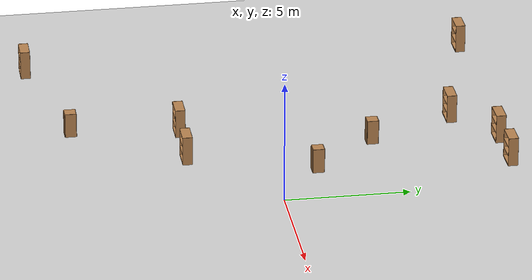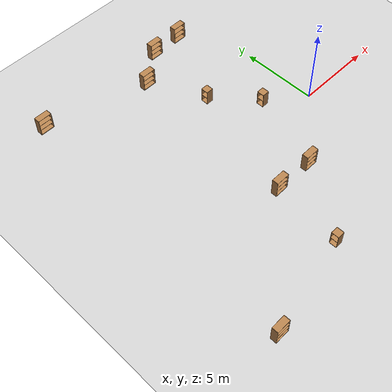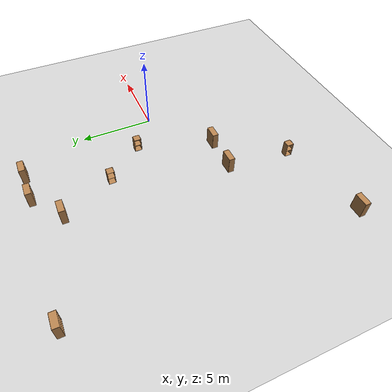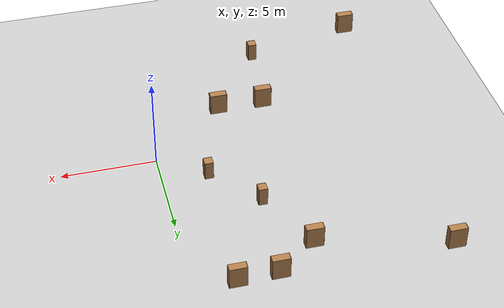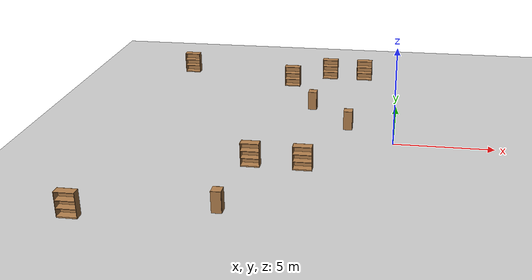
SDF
<sdf version="1.6">
 <world name="default">
  <model name="ground_plane">
   <static>1</static>
   <link name="link">
    <collision name="collision">
     <geometry><plane><normal>0 0 1</normal><size>100 100</size></plane></geometry>
     <surface><friction><ode><mu>100</mu><mu2>50</mu2></ode></friction></surface>
    </collision>
    <visual name="visual">
     <cast_shadows>0</cast_shadows>
     <geometry><plane><normal>0 0 1</normal><size>100 100</size></plane></geometry>
     <material>
      <script><uri>file://media/materials/scripts/gazebo.material</uri><name>Gazebo/Grey</name></script>
     </material>
    </visual>
   </link>
  </model>
  <model name="bookshelf_2">
   <static>1</static>
   <link name="link">
    <inertial><mass>1</mass></inertial>
    <collision name="back">
     <pose>0 0.005 0.6 0 -0 0</pose>
     <geometry><box><size>0.9 0.01 1.2</size></box></geometry>
    </collision>
    <visual name="visual1">
     <pose>0 0.005 0.6 0 -0 0</pose>
     <geometry><box><size>0.9 0.01 1.2</size></box></geometry>
     <material>
      <script><uri>file://media/materials/scripts/gazebo.material</uri><name>Gazebo/Wood</name></script>
     </material>
    </visual>
    <collision name="left_side">
     <pose>0.45 -0.195 0.6 0 -0 0</pose>
     <geometry><box><size>0.02 0.4 1.2</size></box></geometry>
    </collision>
    <visual name="visual2">
     <pose>0.45 -0.195 0.6 0 -0 0</pose>
     <geometry><box><size>0.02 0.4 1.2</size></box></geometry>
     <material>
      <script><uri>file://media/materials/scripts/gazebo.material</uri><name>Gazebo/Wood</name></script>
     </material>
    </visual>
    <collision name="right_side">
     <pose>-0.45 -0.195 0.6 0 -0 0</pose>
     <geometry><box><size>0.02 0.4 1.2</size></box></geometry>
    </collision>
    <visual name="visual3">
     <pose>-0.45 -0.195 0.6 0 -0 0</pose>
     <geometry><box><size>0.02 0.4 1.2</size></box></geometry>
     <material>
      <script><uri>file://media/materials/scripts/gazebo.material</uri><name>Gazebo/Wood</name></script>
     </material>
    </visual>
    <collision name="bottom">
     <pose>0 -0.195 0.03 0 -0 0</pose>
     <geometry><box><size>0.88 0.4 0.06</size></box></geometry>
    </collision>
    <visual name="visual4">
     <pose>0 -0.195 0.03 0 -0 0</pose>
     <geometry><box><size>0.88 0.4 0.06</size></box></geometry>
     <material>
      <script><uri>file://media/materials/scripts/gazebo.material</uri><name>Gazebo/Wood</name></script>
     </material>
    </visual>
    <collision name="top">
     <pose>0 -0.195 1.19 0 -0 0</pose>
     <geometry><box><size>0.88 0.4 0.02</size></box></geometry>
    </collision>
    <visual name="visual5">
     <pose>0 -0.195 1.19 0 -0 0</pose>
     <geometry><box><size>0.88 0.4 0.02</size></box></geometry>
     <material>
      <script><uri>file://media/materials/scripts/gazebo.material</uri><name>Gazebo/Wood</name></script>
     </material>
    </visual>
    <collision name="low_shelf">
     <pose>0 -0.195 0.43 0 -0 0</pose>
     <geometry><box><size>0.88 0.4 0.02</size></box></geometry>
    </collision>
    <visual name="visual6">
     <pose>0 -0.195 0.43 0 -0 0</pose>
     <geometry><box><size>0.88 0.4 0.02</size></box></geometry>
     <material>
      <script><uri>file://media/materials/scripts/gazebo.material</uri><name>Gazebo/Wood</name></script>
     </material>
    </visual>
    <collision name="high_shelf">
     <pose>0 -0.195 0.8 0 -0 0</pose>
     <geometry><box><size>0.88 0.4 0.02</size></box></geometry>
    </collision>
    <visual name="visual7">
     <pose>0 -0.195 0.8 0 -0 0</pose>
     <geometry><box><size>0.88 0.4 0.02</size></box></geometry>
     <material>
      <script><uri>file://media/materials/scripts/gazebo.material</uri><name>Gazebo/Wood</name></script>
     </material>
    </visual>
   </link>
   <pose>-12.949 9.74669 0 0 -0 0</pose>
  </model>
  <model name="bookshelf_3">
   <static>1</static>
   <link name="link">
    <inertial><mass>1</mass></inertial>
    <collision name="back">
     <pose>0 0.005 0.6 0 -0 0</pose>
     <geometry><box><size>0.9 0.01 1.2</size></box></geometry>
    </collision>
    <visual name="visual1">
     <pose>0 0.005 0.6 0 -0 0</pose>
     <geometry><box><size>0.9 0.01 1.2</size></box></geometry>
     <material>
      <script><uri>file://media/materials/scripts/gazebo.material</uri><name>Gazebo/Wood</name></script>
     </material>
    </visual>
    <collision name="left_side">
     <pose>0.45 -0.195 0.6 0 -0 0</pose>
     <geometry><box><size>0.02 0.4 1.2</size></box></geometry>
    </collision>
    <visual name="visual2">
     <pose>0.45 -0.195 0.6 0 -0 0</pose>
     <geometry><box><size>0.02 0.4 1.2</size></box></geometry>
     <material>
      <script><uri>file://media/materials/scripts/gazebo.material</uri><name>Gazebo/Wood</name></script>
     </material>
    </visual>
    <collision name="right_side">
     <pose>-0.45 -0.195 0.6 0 -0 0</pose>
     <geometry><box><size>0.02 0.4 1.2</size></box></geometry>
    </collision>
    <visual name="visual3">
     <pose>-0.45 -0.195 0.6 0 -0 0</pose>
     <geometry><box><size>0.02 0.4 1.2</size></box></geometry>
     <material>
      <script><uri>file://media/materials/scripts/gazebo.material</uri><name>Gazebo/Wood</name></script>
     </material>
    </visual>
    <collision name="bottom">
     <pose>0 -0.195 0.03 0 -0 0</pose>
     <geometry><box><size>0.88 0.4 0.06</size></box></geometry>
    </collision>
    <visual name="visual4">
     <pose>0 -0.195 0.03 0 -0 0</pose>
     <geometry><box><size>0.88 0.4 0.06</size></box></geometry>
     <material>
      <script><uri>file://media/materials/scripts/gazebo.material</uri><name>Gazebo/Wood</name></script>
     </material>
    </visual>
    <collision name="top">
     <pose>0 -0.195 1.19 0 -0 0</pose>
     <geometry><box><size>0.88 0.4 0.02</size></box></geometry>
    </collision>
    <visual name="visual5">
     <pose>0 -0.195 1.19 0 -0 0</pose>
     <geometry><box><size>0.88 0.4 0.02</size></box></geometry>
     <material>
      <script><uri>file://media/materials/scripts/gazebo.material</uri><name>Gazebo/Wood</name></script>
     </material>
    </visual>
    <collision name="low_shelf">
     <pose>0 -0.195 0.43 0 -0 0</pose>
     <geometry><box><size>0.88 0.4 0.02</size></box></geometry>
    </collision>
    <visual name="visual6">
     <pose>0 -0.195 0.43 0 -0 0</pose>
     <geometry><box><size>0.88 0.4 0.02</size></box></geometry>
     <material>
      <script><uri>file://media/materials/scripts/gazebo.material</uri><name>Gazebo/Wood</name></script>
     </material>
    </visual>
    <collision name="high_shelf">
     <pose>0 -0.195 0.8 0 -0 0</pose>
     <geometry><box><size>0.88 0.4 0.02</size></box></geometry>
    </collision>
    <visual name="visual7">
     <pose>0 -0.195 0.8 0 -0 0</pose>
     <geometry><box><size>0.88 0.4 0.02</size></box></geometry>
     <material>
      <script><uri>file://media/materials/scripts/gazebo.material</uri><name>Gazebo/Wood</name></script>
     </material>
    </visual>
   </link>
   <pose>-13.0933 -8.75645 0 0 -0 0</pose>
  </model>
  <model name="bookshelf_5">
   <static>1</static>
   <link name="link">
    <inertial><mass>1</mass></inertial>
    <collision name="back">
     <pose>0 0.005 0.6 0 -0 0</pose>
     <geometry><box><size>0.9 0.01 1.2</size></box></geometry>
    </collision>
    <visual name="visual1">
     <pose>0 0.005 0.6 0 -0 0</pose>
     <geometry><box><size>0.9 0.01 1.2</size></box></geometry>
     <material>
      <script><uri>file://media/materials/scripts/gazebo.material</uri><name>Gazebo/Wood</name></script>
     </material>
    </visual>
    <collision name="left_side">
     <pose>0.45 -0.195 0.6 0 -0 0</pose>
     <geometry><box><size>0.02 0.4 1.2</size></box></geometry>
    </collision>
    <visual name="visual2">
     <pose>0.45 -0.195 0.6 0 -0 0</pose>
     <geometry><box><size>0.02 0.4 1.2</size></box></geometry>
     <material>
      <script><uri>file://media/materials/scripts/gazebo.material</uri><name>Gazebo/Wood</name></script>
     </material>
    </visual>
    <collision name="right_side">
     <pose>-0.45 -0.195 0.6 0 -0 0</pose>
     <geometry><box><size>0.02 0.4 1.2</size></box></geometry>
    </collision>
    <visual name="visual3">
     <pose>-0.45 -0.195 0.6 0 -0 0</pose>
     <geometry><box><size>0.02 0.4 1.2</size></box></geometry>
     <material>
      <script><uri>file://media/materials/scripts/gazebo.material</uri><name>Gazebo/Wood</name></script>
     </material>
    </visual>
    <collision name="bottom">
     <pose>0 -0.195 0.03 0 -0 0</pose>
     <geometry><box><size>0.88 0.4 0.06</size></box></geometry>
    </collision>
    <visual name="visual4">
     <pose>0 -0.195 0.03 0 -0 0</pose>
     <geometry><box><size>0.88 0.4 0.06</size></box></geometry>
     <material>
      <script><uri>file://media/materials/scripts/gazebo.material</uri><name>Gazebo/Wood</name></script>
     </material>
    </visual>
    <collision name="top">
     <pose>0 -0.195 1.19 0 -0 0</pose>
     <geometry><box><size>0.88 0.4 0.02</size></box></geometry>
    </collision>
    <visual name="visual5">
     <pose>0 -0.195 1.19 0 -0 0</pose>
     <geometry><box><size>0.88 0.4 0.02</size></box></geometry>
     <material>
      <script><uri>file://media/materials/scripts/gazebo.material</uri><name>Gazebo/Wood</name></script>
     </material>
    </visual>
    <collision name="low_shelf">
     <pose>0 -0.195 0.43 0 -0 0</pose>
     <geometry><box><size>0.88 0.4 0.02</size></box></geometry>
    </collision>
    <visual name="visual6">
     <pose>0 -0.195 0.43 0 -0 0</pose>
     <geometry><box><size>0.88 0.4 0.02</size></box></geometry>
     <material>
      <script><uri>file://media/materials/scripts/gazebo.material</uri><name>Gazebo/Wood</name></script>
     </material>
    </visual>
    <collision name="high_shelf">
     <pose>0 -0.195 0.8 0 -0 0</pose>
     <geometry><box><size>0.88 0.4 0.02</size></box></geometry>
    </collision>
    <visual name="visual7">
     <pose>0 -0.195 0.8 0 -0 0</pose>
     <geometry><box><size>0.88 0.4 0.02</size></box></geometry>
     <material>
      <script><uri>file://media/materials/scripts/gazebo.material</uri><name>Gazebo/Wood</name></script>
     </material>
    </visual>
   </link>
   <pose>-4.10204 -3.13024 0 0 -0 0</pose>
  </model>
  <model name="bookshelf_6">
   <static>1</static>
   <link name="link">
    <inertial><mass>1</mass></inertial>
    <collision name="back">
     <pose>0 0.005 0.6 0 -0 0</pose>
     <geometry><box><size>0.9 0.01 1.2</size></box></geometry>
    </collision>
    <visual name="visual1">
     <pose>0 0.005 0.6 0 -0 0</pose>
     <geometry><box><size>0.9 0.01 1.2</size></box></geometry>
     <material>
      <script><uri>file://media/materials/scripts/gazebo.material</uri><name>Gazebo/Wood</name></script>
     </material>
    </visual>
    <collision name="left_side">
     <pose>0.45 -0.195 0.6 0 -0 0</pose>
     <geometry><box><size>0.02 0.4 1.2</size></box></geometry>
    </collision>
    <visual name="visual2">
     <pose>0.45 -0.195 0.6 0 -0 0</pose>
     <geometry><box><size>0.02 0.4 1.2</size></box></geometry>
     <material>
      <script><uri>file://media/materials/scripts/gazebo.material</uri><name>Gazebo/Wood</name></script>
     </material>
    </visual>
    <collision name="right_side">
     <pose>-0.45 -0.195 0.6 0 -0 0</pose>
     <geometry><box><size>0.02 0.4 1.2</size></box></geometry>
    </collision>
    <visual name="visual3">
     <pose>-0.45 -0.195 0.6 0 -0 0</pose>
     <geometry><box><size>0.02 0.4 1.2</size></box></geometry>
     <material>
      <script><uri>file://media/materials/scripts/gazebo.material</uri><name>Gazebo/Wood</name></script>
     </material>
    </visual>
    <collision name="bottom">
     <pose>0 -0.195 0.03 0 -0 0</pose>
     <geometry><box><size>0.88 0.4 0.06</size></box></geometry>
    </collision>
    <visual name="visual4">
     <pose>0 -0.195 0.03 0 -0 0</pose>
     <geometry><box><size>0.88 0.4 0.06</size></box></geometry>
     <material>
      <script><uri>file://media/materials/scripts/gazebo.material</uri><name>Gazebo/Wood</name></script>
     </material>
    </visual>
    <collision name="top">
     <pose>0 -0.195 1.19 0 -0 0</pose>
     <geometry><box><size>0.88 0.4 0.02</size></box></geometry>
    </collision>
    <visual name="visual5">
     <pose>0 -0.195 1.19 0 -0 0</pose>
     <geometry><box><size>0.88 0.4 0.02</size></box></geometry>
     <material>
      <script><uri>file://media/materials/scripts/gazebo.material</uri><name>Gazebo/Wood</name></script>
     </material>
    </visual>
    <collision name="low_shelf">
     <pose>0 -0.195 0.43 0 -0 0</pose>
     <geometry><box><size>0.88 0.4 0.02</size></box></geometry>
    </collision>
    <visual name="visual6">
     <pose>0 -0.195 0.43 0 -0 0</pose>
     <geometry><box><size>0.88 0.4 0.02</size></box></geometry>
     <material>
      <script><uri>file://media/materials/scripts/gazebo.material</uri><name>Gazebo/Wood</name></script>
     </material>
    </visual>
    <collision name="high_shelf">
     <pose>0 -0.195 0.8 0 -0 0</pose>
     <geometry><box><size>0.88 0.4 0.02</size></box></geometry>
    </collision>
    <visual name="visual7">
     <pose>0 -0.195 0.8 0 -0 0</pose>
     <geometry><box><size>0.88 0.4 0.02</size></box></geometry>
     <material>
      <script><uri>file://media/materials/scripts/gazebo.material</uri><name>Gazebo/Wood</name></script>
     </material>
    </visual>
   </link>
   <pose>-6.59444 -3.08849 0 0 -0 0</pose>
  </model>
  <model name="bookshelf_8">
   <static>1</static>
   <link name="link">
    <inertial><mass>1</mass></inertial>
    <collision name="back">
     <pose>0 0.005 0.6 0 -0 0</pose>
     <geometry><box><size>0.9 0.01 1.2</size></box></geometry>
    </collision>
    <visual name="visual1">
     <pose>0 0.005 0.6 0 -0 0</pose>
     <geometry><box><size>0.9 0.01 1.2</size></box></geometry>
     <material>
      <script><uri>file://media/materials/scripts/gazebo.material</uri><name>Gazebo/Wood</name></script>
     </material>
    </visual>
    <collision name="left_side">
     <pose>0.45 -0.195 0.6 0 -0 0</pose>
     <geometry><box><size>0.02 0.4 1.2</size></box></geometry>
    </collision>
    <visual name="visual2">
     <pose>0.45 -0.195 0.6 0 -0 0</pose>
     <geometry><box><size>0.02 0.4 1.2</size></box></geometry>
     <material>
      <script><uri>file://media/materials/scripts/gazebo.material</uri><name>Gazebo/Wood</name></script>
     </material>
    </visual>
    <collision name="right_side">
     <pose>-0.45 -0.195 0.6 0 -0 0</pose>
     <geometry><box><size>0.02 0.4 1.2</size></box></geometry>
    </collision>
    <visual name="visual3">
     <pose>-0.45 -0.195 0.6 0 -0 0</pose>
     <geometry><box><size>0.02 0.4 1.2</size></box></geometry>
     <material>
      <script><uri>file://media/materials/scripts/gazebo.material</uri><name>Gazebo/Wood</name></script>
     </material>
    </visual>
    <collision name="bottom">
     <pose>0 -0.195 0.03 0 -0 0</pose>
     <geometry><box><size>0.88 0.4 0.06</size></box></geometry>
    </collision>
    <visual name="visual4">
     <pose>0 -0.195 0.03 0 -0 0</pose>
     <geometry><box><size>0.88 0.4 0.06</size></box></geometry>
     <material>
      <script><uri>file://media/materials/scripts/gazebo.material</uri><name>Gazebo/Wood</name></script>
     </material>
    </visual>
    <collision name="top">
     <pose>0 -0.195 1.19 0 -0 0</pose>
     <geometry><box><size>0.88 0.4 0.02</size></box></geometry>
    </collision>
    <visual name="visual5">
     <pose>0 -0.195 1.19 0 -0 0</pose>
     <geometry><box><size>0.88 0.4 0.02</size></box></geometry>
     <material>
      <script><uri>file://media/materials/scripts/gazebo.material</uri><name>Gazebo/Wood</name></script>
     </material>
    </visual>
    <collision name="low_shelf">
     <pose>0 -0.195 0.43 0 -0 0</pose>
     <geometry><box><size>0.88 0.4 0.02</size></box></geometry>
    </collision>
    <visual name="visual6">
     <pose>0 -0.195 0.43 0 -0 0</pose>
     <geometry><box><size>0.88 0.4 0.02</size></box></geometry>
     <material>
      <script><uri>file://media/materials/scripts/gazebo.material</uri><name>Gazebo/Wood</name></script>
     </material>
    </visual>
    <collision name="high_shelf">
     <pose>0 -0.195 0.8 0 -0 0</pose>
     <geometry><box><size>0.88 0.4 0.02</size></box></geometry>
    </collision>
    <visual name="visual7">
     <pose>0 -0.195 0.8 0 -0 0</pose>
     <geometry><box><size>0.88 0.4 0.02</size></box></geometry>
     <material>
      <script><uri>file://media/materials/scripts/gazebo.material</uri><name>Gazebo/Wood</name></script>
     </material>
    </visual>
   </link>
   <pose>-2.06798 9.66867 0 0 -0 0</pose>
  </model>
  <model name="bookshelf_9">
   <static>1</static>
   <link name="link">
    <inertial><mass>1</mass></inertial>
    <collision name="back">
     <pose>0 0.005 0.6 0 -0 0</pose>
     <geometry><box><size>0.9 0.01 1.2</size></box></geometry>
    </collision>
    <visual name="visual1">
     <pose>0 0.005 0.6 0 -0 0</pose>
     <geometry><box><size>0.9 0.01 1.2</size></box></geometry>
     <material>
      <script><uri>file://media/materials/scripts/gazebo.material</uri><name>Gazebo/Wood</name></script>
     </material>
    </visual>
    <collision name="left_side">
     <pose>0.45 -0.195 0.6 0 -0 0</pose>
     <geometry><box><size>0.02 0.4 1.2</size></box></geometry>
    </collision>
    <visual name="visual2">
     <pose>0.45 -0.195 0.6 0 -0 0</pose>
     <geometry><box><size>0.02 0.4 1.2</size></box></geometry>
     <material>
      <script><uri>file://media/materials/scripts/gazebo.material</uri><name>Gazebo/Wood</name></script>
     </material>
    </visual>
    <collision name="right_side">
     <pose>-0.45 -0.195 0.6 0 -0 0</pose>
     <geometry><box><size>0.02 0.4 1.2</size></box></geometry>
    </collision>
    <visual name="visual3">
     <pose>-0.45 -0.195 0.6 0 -0 0</pose>
     <geometry><box><size>0.02 0.4 1.2</size></box></geometry>
     <material>
      <script><uri>file://media/materials/scripts/gazebo.material</uri><name>Gazebo/Wood</name></script>
     </material>
    </visual>
    <collision name="bottom">
     <pose>0 -0.195 0.03 0 -0 0</pose>
     <geometry><box><size>0.88 0.4 0.06</size></box></geometry>
    </collision>
    <visual name="visual4">
     <pose>0 -0.195 0.03 0 -0 0</pose>
     <geometry><box><size>0.88 0.4 0.06</size></box></geometry>
     <material>
      <script><uri>file://media/materials/scripts/gazebo.material</uri><name>Gazebo/Wood</name></script>
     </material>
    </visual>
    <collision name="top">
     <pose>0 -0.195 1.19 0 -0 0</pose>
     <geometry><box><size>0.88 0.4 0.02</size></box></geometry>
    </collision>
    <visual name="visual5">
     <pose>0 -0.195 1.19 0 -0 0</pose>
     <geometry><box><size>0.88 0.4 0.02</size></box></geometry>
     <material>
      <script><uri>file://media/materials/scripts/gazebo.material</uri><name>Gazebo/Wood</name></script>
     </material>
    </visual>
    <collision name="low_shelf">
     <pose>0 -0.195 0.43 0 -0 0</pose>
     <geometry><box><size>0.88 0.4 0.02</size></box></geometry>
    </collision>
    <visual name="visual6">
     <pose>0 -0.195 0.43 0 -0 0</pose>
     <geometry><box><size>0.88 0.4 0.02</size></box></geometry>
     <material>
      <script><uri>file://media/materials/scripts/gazebo.material</uri><name>Gazebo/Wood</name></script>
     </material>
    </visual>
    <collision name="high_shelf">
     <pose>0 -0.195 0.8 0 -0 0</pose>
     <geometry><box><size>0.88 0.4 0.02</size></box></geometry>
    </collision>
    <visual name="visual7">
     <pose>0 -0.195 0.8 0 -0 0</pose>
     <geometry><box><size>0.88 0.4 0.02</size></box></geometry>
     <material>
      <script><uri>file://media/materials/scripts/gazebo.material</uri><name>Gazebo/Wood</name></script>
     </material>
    </visual>
   </link>
   <pose>-4.16281 9.61954 0 0 -0 0</pose>
  </model>
  <model name="bookshelf_10">
   <static>1</static>
   <link name="link">
    <inertial><mass>1</mass></inertial>
    <collision name="back">
     <pose>0 0.005 0.6 0 -0 0</pose>
     <geometry><box><size>0.9 0.01 1.2</size></box></geometry>
    </collision>
    <visual name="visual1">
     <pose>0 0.005 0.6 0 -0 0</pose>
     <geometry><box><size>0.9 0.01 1.2</size></box></geometry>
     <material>
      <script><uri>file://media/materials/scripts/gazebo.material</uri><name>Gazebo/Wood</name></script>
     </material>
    </visual>
    <collision name="left_side">
     <pose>0.45 -0.195 0.6 0 -0 0</pose>
     <geometry><box><size>0.02 0.4 1.2</size></box></geometry>
    </collision>
    <visual name="visual2">
     <pose>0.45 -0.195 0.6 0 -0 0</pose>
     <geometry><box><size>0.02 0.4 1.2</size></box></geometry>
     <material>
      <script><uri>file://media/materials/scripts/gazebo.material</uri><name>Gazebo/Wood</name></script>
     </material>
    </visual>
    <collision name="right_side">
     <pose>-0.45 -0.195 0.6 0 -0 0</pose>
     <geometry><box><size>0.02 0.4 1.2</size></box></geometry>
    </collision>
    <visual name="visual3">
     <pose>-0.45 -0.195 0.6 0 -0 0</pose>
     <geometry><box><size>0.02 0.4 1.2</size></box></geometry>
     <material>
      <script><uri>file://media/materials/scripts/gazebo.material</uri><name>Gazebo/Wood</name></script>
     </material>
    </visual>
    <collision name="bottom">
     <pose>0 -0.195 0.03 0 -0 0</pose>
     <geometry><box><size>0.88 0.4 0.06</size></box></geometry>
    </collision>
    <visual name="visual4">
     <pose>0 -0.195 0.03 0 -0 0</pose>
     <geometry><box><size>0.88 0.4 0.06</size></box></geometry>
     <material>
      <script><uri>file://media/materials/scripts/gazebo.material</uri><name>Gazebo/Wood</name></script>
     </material>
    </visual>
    <collision name="top">
     <pose>0 -0.195 1.19 0 -0 0</pose>
     <geometry><box><size>0.88 0.4 0.02</size></box></geometry>
    </collision>
    <visual name="visual5">
     <pose>0 -0.195 1.19 0 -0 0</pose>
     <geometry><box><size>0.88 0.4 0.02</size></box></geometry>
     <material>
      <script><uri>file://media/materials/scripts/gazebo.material</uri><name>Gazebo/Wood</name></script>
     </material>
    </visual>
    <collision name="low_shelf">
     <pose>0 -0.195 0.43 0 -0 0</pose>
     <geometry><box><size>0.88 0.4 0.02</size></box></geometry>
    </collision>
    <visual name="visual6">
     <pose>0 -0.195 0.43 0 -0 0</pose>
     <geometry><box><size>0.88 0.4 0.02</size></box></geometry>
     <material>
      <script><uri>file://media/materials/scripts/gazebo.material</uri><name>Gazebo/Wood</name></script>
     </material>
    </visual>
    <collision name="high_shelf">
     <pose>0 -0.195 0.8 0 -0 0</pose>
     <geometry><box><size>0.88 0.4 0.02</size></box></geometry>
    </collision>
    <visual name="visual7">
     <pose>0 -0.195 0.8 0 -0 0</pose>
     <geometry><box><size>0.88 0.4 0.02</size></box></geometry>
     <material>
      <script><uri>file://media/materials/scripts/gazebo.material</uri><name>Gazebo/Wood</name></script>
     </material>
    </visual>
   </link>
   <pose>-6.28184 8.02916 0 0 -0 0</pose>
  </model>
  <model name="cabinet">
   <static>1</static>
   <link name="cabinet_bottom_plate">
    <inertial>
     <pose>0 0 -1 0 -0 0</pose>
     <inertia><ixx>2.05</ixx><ixy>0</ixy><ixz>0</ixz><iyy>2.05</iyy><iyz>0</iyz><izz>2.05</izz></inertia>
     <mass>25</mass>
    </inertial>
    <collision name="cabinet_bottom_plate_geom">
     <pose>0 0 0.01 0 -0 0</pose>
     <geometry><box><size>0.45 0.45 0.02</size></box></geometry>
    </collision>
    <visual name="cabinet_bottom_plate_geom_visual">
     <pose>0 0 0.01 0 -0 0</pose>
     <geometry><box><size>0.45 0.45 0.02</size></box></geometry>
     <material>
      <script><uri>file://media/materials/scripts/gazebo.material</uri><name>Gazebo/Wood</name></script>
     </material>
    </visual>
    <collision name="cabinet_bottom_plate_geom_cabinet_back_plate">
     <pose>0.235 0 0.51 0 -0 0</pose>
     <geometry><box><size>0.02 0.45 1.02</size></box></geometry>
    </collision>
    <visual name="cabinet_bottom_plate_geom_cabinet_back_plate_visual">
     <pose>0.235 0 0.51 0 -0 0</pose>
     <geometry><box><size>0.02 0.45 1.02</size></box></geometry>
     <material>
      <script><uri>file://media/materials/scripts/gazebo.material</uri><name>Gazebo/Wood</name></script>
     </material>
    </visual>
    <collision name="cabinet_bottom_plate_geom_cabinet_left_plate">
     <pose>0 0.235 0.51 0 -0 0</pose>
     <geometry><box><size>0.45 0.02 1.02</size></box></geometry>
    </collision>
    <visual name="cabinet_bottom_plate_geom_cabinet_left_plate_visual">
     <pose>0 0.235 0.51 0 -0 0</pose>
     <geometry><box><size>0.45 0.02 1.02</size></box></geometry>
     <material>
      <script><uri>file://media/materials/scripts/gazebo.material</uri><name>Gazebo/Wood</name></script>
     </material>
    </visual>
    <collision name="cabinet_bottom_plate_geom_cabinet_middle_plate">
     <pose>0 0 0.51 0 -0 0</pose>
     <geometry><box><size>0.45 0.45 0.02</size></box></geometry>
    </collision>
    <visual name="cabinet_bottom_plate_geom_cabinet_middle_plate_visual">
     <pose>0 0 0.51 0 -0 0</pose>
     <geometry><box><size>0.45 0.45 0.02</size></box></geometry>
     <material>
      <script><uri>file://media/materials/scripts/gazebo.material</uri><name>Gazebo/Wood</name></script>
     </material>
    </visual>
    <collision name="cabinet_bottom_plate_geom_cabinet_right_plate">
     <pose>0 -0.235 0.51 0 -0 0</pose>
     <geometry><box><size>0.45 0.02 1.02</size></box></geometry>
    </collision>
    <visual name="cabinet_bottom_plate_geom_cabinet_right_plate_visual">
     <pose>0 -0.235 0.51 0 -0 0</pose>
     <geometry><box><size>0.45 0.02 1.02</size></box></geometry>
     <material>
      <script><uri>file://media/materials/scripts/gazebo.material</uri><name>Gazebo/Wood</name></script>
     </material>
    </visual>
    <collision name="cabinet_bottom_plate_geom_cabinet_top_plate">
     <pose>0 0 1.01 0 -0 0</pose>
     <geometry><box><size>0.45 0.45 0.02</size></box></geometry>
    </collision>
    <visual name="cabinet_bottom_plate_geom_cabinet_top_plate_visual">
     <pose>0 0 1.01 0 -0 0</pose>
     <geometry><box><size>0.45 0.45 0.02</size></box></geometry>
     <material>
      <script><uri>file://media/materials/scripts/gazebo.material</uri><name>Gazebo/Wood</name></script>
     </material>
    </visual>
   </link>
   <pose>-2.42083 1.72273 0 0 -0 0</pose>
  </model>
  <model name="cabinet_3">
   <static>1</static>
   <link name="cabinet_bottom_plate">
    <inertial>
     <pose>0 0 -1 0 -0 0</pose>
     <inertia><ixx>2.05</ixx><ixy>0</ixy><ixz>0</ixz><iyy>2.05</iyy><iyz>0</iyz><izz>2.05</izz></inertia>
     <mass>25</mass>
    </inertial>
    <collision name="cabinet_bottom_plate_geom">
     <pose>0 0 0.01 0 -0 0</pose>
     <geometry><box><size>0.45 0.45 0.02</size></box></geometry>
    </collision>
    <visual name="cabinet_bottom_plate_geom_visual">
     <pose>0 0 0.01 0 -0 0</pose>
     <geometry><box><size>0.45 0.45 0.02</size></box></geometry>
     <material>
      <script><uri>file://media/materials/scripts/gazebo.material</uri><name>Gazebo/Wood</name></script>
     </material>
    </visual>
    <collision name="cabinet_bottom_plate_geom_cabinet_back_plate">
     <pose>0.235 0 0.51 0 -0 0</pose>
     <geometry><box><size>0.02 0.45 1.02</size></box></geometry>
    </collision>
    <visual name="cabinet_bottom_plate_geom_cabinet_back_plate_visual">
     <pose>0.235 0 0.51 0 -0 0</pose>
     <geometry><box><size>0.02 0.45 1.02</size></box></geometry>
     <material>
      <script><uri>file://media/materials/scripts/gazebo.material</uri><name>Gazebo/Wood</name></script>
     </material>
    </visual>
    <collision name="cabinet_bottom_plate_geom_cabinet_left_plate">
     <pose>0 0.235 0.51 0 -0 0</pose>
     <geometry><box><size>0.45 0.02 1.02</size></box></geometry>
    </collision>
    <visual name="cabinet_bottom_plate_geom_cabinet_left_plate_visual">
     <pose>0 0.235 0.51 0 -0 0</pose>
     <geometry><box><size>0.45 0.02 1.02</size></box></geometry>
     <material>
      <script><uri>file://media/materials/scripts/gazebo.material</uri><name>Gazebo/Wood</name></script>
     </material>
    </visual>
    <collision name="cabinet_bottom_plate_geom_cabinet_middle_plate">
     <pose>0 0 0.51 0 -0 0</pose>
     <geometry><box><size>0.45 0.45 0.02</size></box></geometry>
    </collision>
    <visual name="cabinet_bottom_plate_geom_cabinet_middle_plate_visual">
     <pose>0 0 0.51 0 -0 0</pose>
     <geometry><box><size>0.45 0.45 0.02</size></box></geometry>
     <material>
      <script><uri>file://media/materials/scripts/gazebo.material</uri><name>Gazebo/Wood</name></script>
     </material>
    </visual>
    <collision name="cabinet_bottom_plate_geom_cabinet_right_plate">
     <pose>0 -0.235 0.51 0 -0 0</pose>
     <geometry><box><size>0.45 0.02 1.02</size></box></geometry>
    </collision>
    <visual name="cabinet_bottom_plate_geom_cabinet_right_plate_visual">
     <pose>0 -0.235 0.51 0 -0 0</pose>
     <geometry><box><size>0.45 0.02 1.02</size></box></geometry>
     <material>
      <script><uri>file://media/materials/scripts/gazebo.material</uri><name>Gazebo/Wood</name></script>
     </material>
    </visual>
    <collision name="cabinet_bottom_plate_geom_cabinet_top_plate">
     <pose>0 0 1.01 0 -0 0</pose>
     <geometry><box><size>0.45 0.45 0.02</size></box></geometry>
    </collision>
    <visual name="cabinet_bottom_plate_geom_cabinet_top_plate_visual">
     <pose>0 0 1.01 0 -0 0</pose>
     <geometry><box><size>0.45 0.45 0.02</size></box></geometry>
     <material>
      <script><uri>file://media/materials/scripts/gazebo.material</uri><name>Gazebo/Wood</name></script>
     </material>
    </visual>
   </link>
   <pose>-4.61103 4.30123 0 0 -0 0</pose>
  </model>
  <model name="cabinet_4">
   <static>1</static>
   <link name="cabinet_bottom_plate">
    <inertial>
     <pose>0 0 -1 0 -0 0</pose>
     <inertia><ixx>2.05</ixx><ixy>0</ixy><ixz>0</ixz><iyy>2.05</iyy><iyz>0</iyz><izz>2.05</izz></inertia>
     <mass>25</mass>
    </inertial>
    <collision name="cabinet_bottom_plate_geom">
     <pose>0 0 0.01 0 -0 0</pose>
     <geometry><box><size>0.45 0.45 0.02</size></box></geometry>
    </collision>
    <visual name="cabinet_bottom_plate_geom_visual">
     <pose>0 0 0.01 0 -0 0</pose>
     <geometry><box><size>0.45 0.45 0.02</size></box></geometry>
     <material>
      <script><uri>file://media/materials/scripts/gazebo.material</uri><name>Gazebo/Wood</name></script>
     </material>
    </visual>
    <collision name="cabinet_bottom_plate_geom_cabinet_back_plate">
     <pose>0.235 0 0.51 0 -0 0</pose>
     <geometry><box><size>0.02 0.45 1.02</size></box></geometry>
    </collision>
    <visual name="cabinet_bottom_plate_geom_cabinet_back_plate_visual">
     <pose>0.235 0 0.51 0 -0 0</pose>
     <geometry><box><size>0.02 0.45 1.02</size></box></geometry>
     <material>
      <script><uri>file://media/materials/scripts/gazebo.material</uri><name>Gazebo/Wood</name></script>
     </material>
    </visual>
    <collision name="cabinet_bottom_plate_geom_cabinet_left_plate">
     <pose>0 0.235 0.51 0 -0 0</pose>
     <geometry><box><size>0.45 0.02 1.02</size></box></geometry>
    </collision>
    <visual name="cabinet_bottom_plate_geom_cabinet_left_plate_visual">
     <pose>0 0.235 0.51 0 -0 0</pose>
     <geometry><box><size>0.45 0.02 1.02</size></box></geometry>
     <material>
      <script><uri>file://media/materials/scripts/gazebo.material</uri><name>Gazebo/Wood</name></script>
     </material>
    </visual>
    <collision name="cabinet_bottom_plate_geom_cabinet_middle_plate">
     <pose>0 0 0.51 0 -0 0</pose>
     <geometry><box><size>0.45 0.45 0.02</size></box></geometry>
    </collision>
    <visual name="cabinet_bottom_plate_geom_cabinet_middle_plate_visual">
     <pose>0 0 0.51 0 -0 0</pose>
     <geometry><box><size>0.45 0.45 0.02</size></box></geometry>
     <material>
      <script><uri>file://media/materials/scripts/gazebo.material</uri><name>Gazebo/Wood</name></script>
     </material>
    </visual>
    <collision name="cabinet_bottom_plate_geom_cabinet_right_plate">
     <pose>0 -0.235 0.51 0 -0 0</pose>
     <geometry><box><size>0.45 0.02 1.02</size></box></geometry>
    </collision>
    <visual name="cabinet_bottom_plate_geom_cabinet_right_plate_visual">
     <pose>0 -0.235 0.51 0 -0 0</pose>
     <geometry><box><size>0.45 0.02 1.02</size></box></geometry>
     <material>
      <script><uri>file://media/materials/scripts/gazebo.material</uri><name>Gazebo/Wood</name></script>
     </material>
    </visual>
    <collision name="cabinet_bottom_plate_geom_cabinet_top_plate">
     <pose>0 0 1.01 0 -0 0</pose>
     <geometry><box><size>0.45 0.45 0.02</size></box></geometry>
    </collision>
    <visual name="cabinet_bottom_plate_geom_cabinet_top_plate_visual">
     <pose>0 0 1.01 0 -0 0</pose>
     <geometry><box><size>0.45 0.45 0.02</size></box></geometry>
     <material>
      <script><uri>file://media/materials/scripts/gazebo.material</uri><name>Gazebo/Wood</name></script>
     </material>
    </visual>
   </link>
   <pose>-7.08881 -7.66206 0 0 -0 0</pose>
  </model>
 </world>
</sdf>
